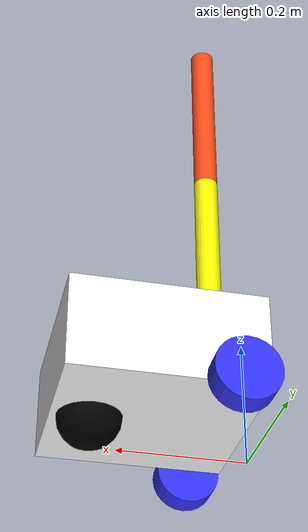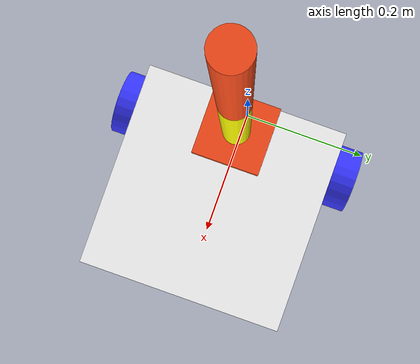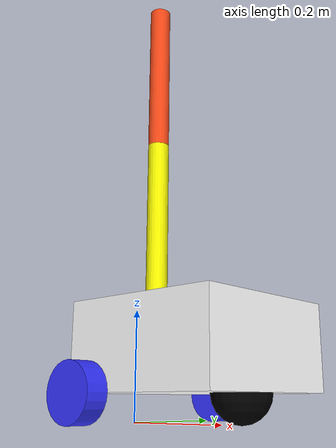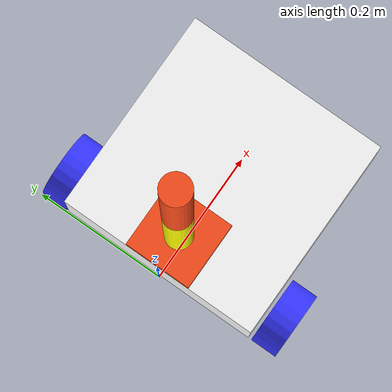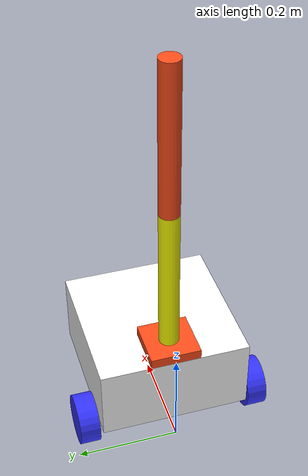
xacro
<?xml version="1.0" encoding="utf-8"?>
<robot xmlns:xacro="http://www.ros.org/wiki/xacro"  name="bbot_robot">

  <xacro:include filename="bbot_description.xacro"/>
  <xacro:include filename="ros2_control.xacro"/>
  <xacro:include filename="arm.xacro"/>

  <joint name="arm_base_joint" type="fixed">
    <parent link="base_link"/>
    <child link="arm_base_link"/>
    <origin xyz="0.05 0 0.2" rpy="0 0 0"/>
  </joint>

</robot>

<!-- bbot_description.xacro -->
<robot xmlns:xacro="http://www.ros.org/wiki/xacro" >
  <xacro:include filename="inertial_macros.xacro"/>
  <material name="white">
    <color rgba="1 1 1 1"/>
  </material>

  <material name="orange">
    <color rgba="1 0.3 0.1 1"/>
  </material>

  <material name="blue">
    <color rgba="0.2 0.2 1 1"/>
  </material>

  <material name="black">
    <color rgba="0 0 0 1"/>
  </material>

  <!-- BASE LINK  -->
  <link name="base_link">

  </link>

  <!-- base -->
  <joint name="base_joint" type="fixed">
    <parent link="base_link"/>
    <child link="base"/>
    <origin xyz="0 0 0.05"/>
  </joint>

  <link name="base">
    <visual>
      <origin xyz="0.15 0 0.075"/>
      <geometry>
        <box size="0.3 0.3 0.15"/>
      </geometry>
      <material name="white"/>
    </visual>
    <collision>
      <origin xyz="0.15 0 0.075"/>
      <geometry>
        <box size="0.3 0.3 0.15"/>
      </geometry>
    </collision>
    <xacro:inertial_box mass="0.5" x="0.3" y="0.3" z="0.15">
      <origin xyz="0.15 0 0.075" rpy="0 0 0"/>
    </xacro:inertial_box>
  </link>

  <!-- left_wheel -->

  <joint name="left_wheel_joint" type="continuous">
    <parent link="base"/>
    <child link="left_wheel"/>
    <origin xyz="0.05 0.175 0" rpy="-${pi/2} 0 0"/>
    <axis xyz="0 0 1"/>
  </joint>

  <link name="left_wheel">
    <visual>
      <geometry>
        <cylinder radius="0.05" length="0.04"/>
      </geometry>
      <material name="blue"/>
    </visual>
    <collision>
      <geometry>
        <cylinder radius="0.05" length="0.04"/>
      </geometry>
    </collision>
    <xacro:inertial_cylinder mass="0.1" length="0.04" radius="0.05">
      <origin xyz="0 0 0" rpy="0 0 0"/>
    </xacro:inertial_cylinder>
  </link>

  <!-- right_wheel -->

  <joint name="right_wheel_joint" type="continuous">
    <parent link="base"/>
    <child link="right_wheel"/>
    <origin xyz="0.05 -0.175 0" rpy="${pi/2} 0 0"/>
    <axis xyz="0 0 -1"/>
  </joint>

  <link name="right_wheel">
    <visual>
      <geometry>
        <cylinder radius="0.05" length="0.04"/>
      </geometry>
      <material name="blue"/>
    </visual>
    <collision>
      <geometry>
        <cylinder radius="0.05" length="0.04"/>
      </geometry>
    </collision>
    <xacro:inertial_cylinder mass="0.1" length="0.04" radius="0.05">
      <origin xyz="0 0 0" rpy="0 0 0"/>
    </xacro:inertial_cylinder>
  </link>

  <joint name="caster_wheel_joint" type="fixed">
    <parent link="base"/>
    <child link="caster_wheel"/>
    <origin xyz="0.24 0 0"/>
  </joint>

  <link name="caster_wheel">
    <visual>
      <geometry>
        <sphere radius="0.05"/>
      </geometry>
      <material name="black"/>
    </visual>
    <collision>
      <geometry>
        <sphere radius="0.05"/>
      </geometry>
    </collision>
    <xacro:inertial_sphere mass="0.1" radius="0.05">
      <origin xyz="0 0 0" rpy="0 0 0"/>
    </xacro:inertial_sphere>
  </link>

  <gazebo reference="caster_wheel">
    <material>Gazebo/Black</material>
    <mu1 value="0.001"/>
    <mu2 value="0.001"/>
  </gazebo>

</robot>

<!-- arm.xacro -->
<robot xmlns:xacro="http://www.ros.org/wiki/xacro">

    <xacro:property name="arm_base_length" value="0.1" />
    <xacro:property name="arm_base_width" value="0.1" />
    <xacro:property name="arm_base_height" value="0.02" />
    <xacro:property name="forearm_radius" value="0.02" />
    <xacro:property name="forearm_length" value="0.3" />
    <xacro:property name="hand_radius" value="0.02" />
    <xacro:property name="hand_length" value="0.3" />
    <material name="yellow">
        <color rgba="1.0 1.0 0 1" />
    </material>
    <link name="arm_base_link">
        <visual>
            <geometry>
                <box size="${arm_base_length} ${arm_base_width} ${arm_base_height}" />
            </geometry>
            <origin xyz="0 0 ${arm_base_height / 2.0}" rpy="0 0 0" />
            <material name="orange" />
        </visual>
    </link>

    <link name="forearm_link">
        <visual>
            <geometry>
                <cylinder radius="${forearm_radius}" length="${forearm_length}" />
            </geometry>
            <origin xyz="0 0 ${forearm_length / 2.0}" rpy="0 0 0" />
            <material name="yellow" />
        </visual>
    </link>

    <link name="hand_link">
        <visual>
            <geometry>
                <cylinder radius="${hand_radius}" length="${hand_length}" />
            </geometry>
            <origin xyz="0 0 ${hand_length / 2.0}" rpy="0 0 0" />
            <material name="orange" />
        </visual>
    </link>

    <joint name="arm_joint1" type="revolute">
        <parent link="arm_base_link" />
        <child link="forearm_link" />
        <origin xyz="0 0 ${arm_base_height}" rpy="0 0 0" />
        <axis xyz="0 1 0" />
        <limit lower="0" upper="${pi/2}" effort="100" velocity="100" />
        <dynamics friction="0.05" damping="0.1" />
    </joint>

    <joint name="arm_joint2" type="revolute">
        <parent link="forearm_link" />
        <child link="hand_link" />
        <origin xyz="0 0 ${forearm_length}" rpy="0 0 0" />
        <axis xyz="0 1 0" />
        <limit lower="0" upper="${pi/2}" effort="100" velocity="100" />
        <dynamics friction="0.05" damping="0.1" />
    </joint>

</robot>
